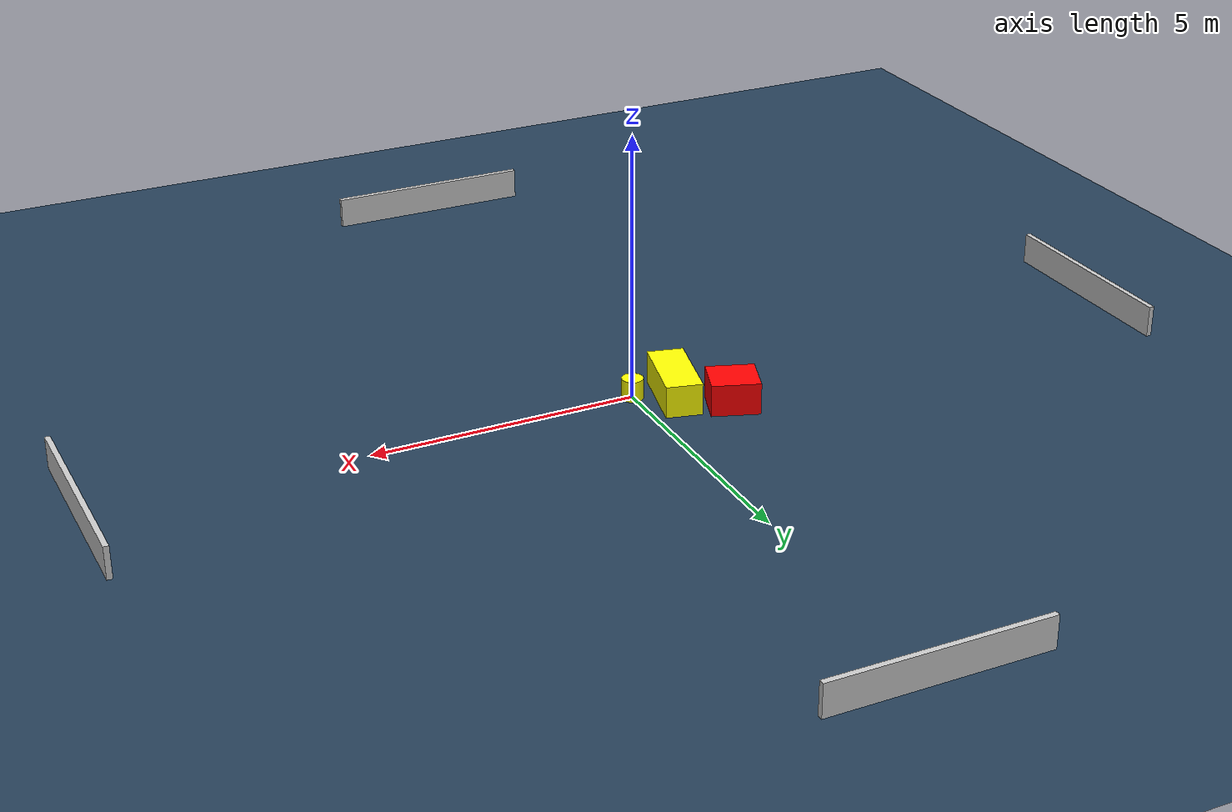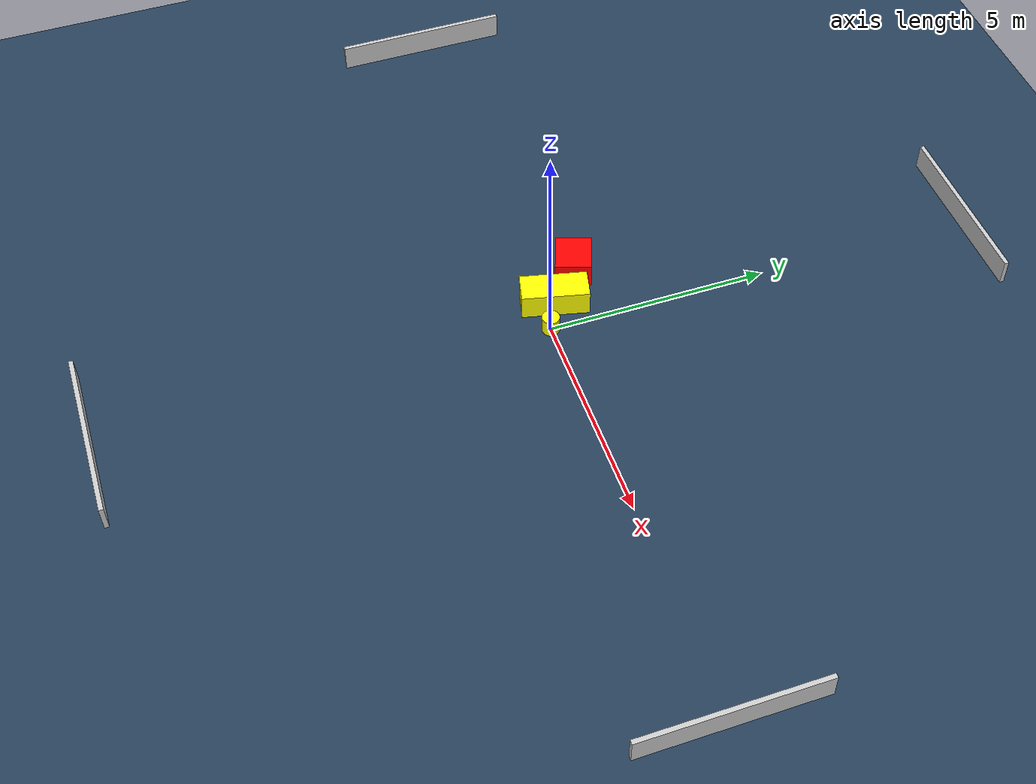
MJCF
<?xml version="1.0" ?>
<mujoco model="generated_environment">
  <option timestep="0.01" integrator="RK4" cone="elliptic"/>
  <default>
    <geom density="1"/>
  </default>
  <asset>
    <texture builtin="gradient" height="3072" name="skybox" rgb1="0.3 0.5 0.7" rgb2="0 0 0" type="skybox" width="512"/>
    <texture builtin="checker" height="300" name="groundplane" rgb1="0.2 0.3 0.4" rgb2="0.1 0.2 0.3" type="2d" width="300"/>
    <material name="groundplane" reflectance="0.2" texrepeat="5 5" texture="groundplane"/>
  </asset>
  <worldbody>
    <light dir="0 0 -1" directional="true" pos="0 0 1.5"/>
    <geom condim="3" friction="0.5 0.005 0.001" material="groundplane" name="floor" pos="0 0 0" size="0 0 0.05" type="plane"/>
    <body name="walls">
      <geom name="wall_1" condim="4" pos="-10.0 0.0 0.3" rgba="0.800000011920929 0.800000011920929 0.800000011920929 1.0" size="0.05 2.0 0.3" type="box"/>
      <geom name="wall_2" condim="4" pos="10.0 0.0 0.3" rgba="0.800000011920929 0.800000011920929 0.800000011920929 1.0" size="0.05 2.0 0.3" type="box"/>
      <geom name="wall_3" condim="4" pos="0.0 -10.0 0.3" rgba="0.800000011920929 0.800000011920929 0.800000011920929 1.0" size="2.0 0.05 0.3" type="box"/>
      <geom name="wall_4" condim="4" pos="0.0 10.0 0.3" rgba="0.800000011920929 0.800000011920929 0.800000011920929 1.0" size="2.0 0.05 0.3" type="box"/>
    </body>
    <body name="robot">
      <joint name="joint_x" type="slide" pos="0 0 0" axis="1 0 0"/>
      <joint name="joint_y" type="slide" pos="0 0 0" axis="0 1 0"/>
      <geom name="robot" type="cylinder" pos="0.0 0.0 0.2" size="0.2 0.2 0.0" mass="5.0" friction="1.0 0.005 0.0001" condim="4" rgba="1.0 1.0 0.0 1.0"/>
    </body>
    <body name="obstacle_1_movable">
      <geom name="obstacle_1_movable" condim="4" pos="-0.680855475416212 0.3236355981209443 0.3" euler="0 0 346.5294197127878" friction="0.0 0.005 0.001" rgba="1.0 1.0 0.0 1.0" size="0.3378549893445153 0.7520329595430151 0.3" type="box" mass="0.1"/>
      <joint type="free"/>
    </body>
    <body name="obstacle_2_static">
      <geom name="obstacle_2_static" condim="4" pos="-1.4784898745104078 1.0465432518902658 0.3" euler="0 0 160.42449190839292" friction="0.0 0.005 0.001" rgba="1.0 0.0 0.0 1.0" size="0.4490661884975643 0.40465270620096006 0.3" type="box"/>
    </body>
  </worldbody>
  <actuator>
    <motor name="actuator_x" joint="joint_x" gear="1" ctrlrange="-1 1"/>
    <motor name="actuator_y" joint="joint_y" gear="1" ctrlrange="-1 1"/>
  </actuator>
</mujoco>
